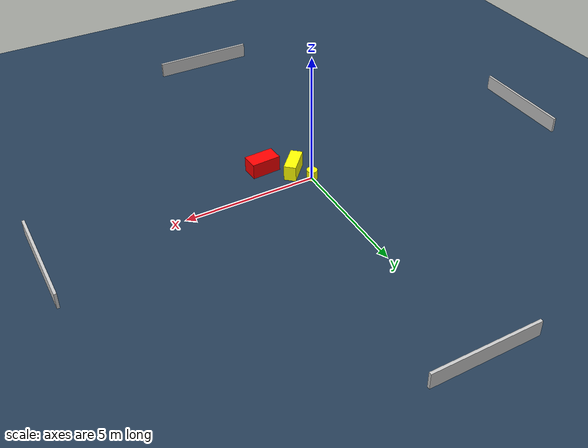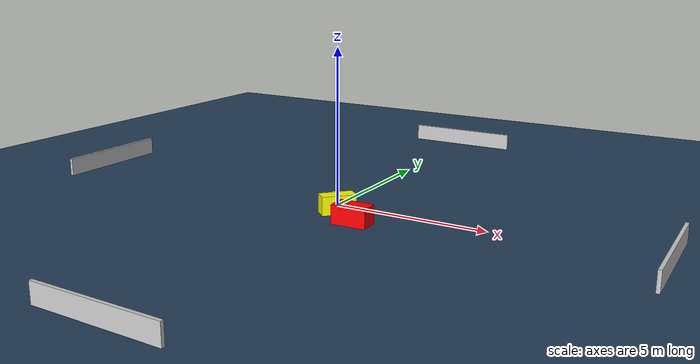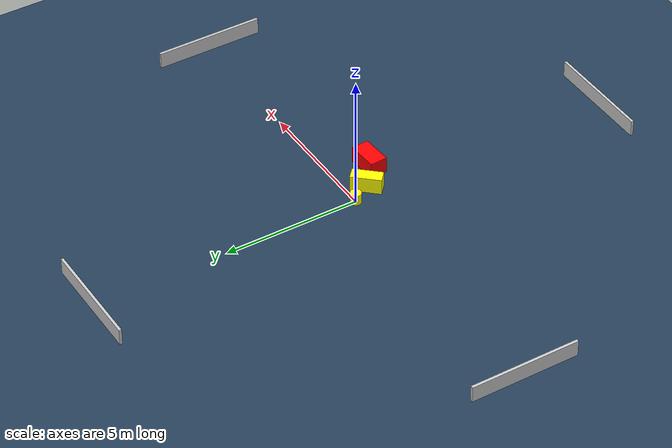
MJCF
<?xml version="1.0" ?>
<mujoco model="generated_environment">
  <option timestep="0.01" integrator="RK4" cone="elliptic"/>
  <default>
    <geom density="1"/>
  </default>
  <asset>
    <texture builtin="gradient" height="3072" name="skybox" rgb1="0.3 0.5 0.7" rgb2="0 0 0" type="skybox" width="512"/>
    <texture builtin="checker" height="300" name="groundplane" rgb1="0.2 0.3 0.4" rgb2="0.1 0.2 0.3" type="2d" width="300"/>
    <material name="groundplane" reflectance="0.2" texrepeat="5 5" texture="groundplane"/>
  </asset>
  <worldbody>
    <light dir="0 0 -1" directional="true" pos="0 0 1.5"/>
    <geom condim="3" friction="0.5 0.005 0.001" material="groundplane" name="floor" pos="0 0 0" size="0 0 0.05" type="plane"/>
    <body name="walls">
      <geom name="wall_1" condim="4" pos="-10.0 0.0 0.3" rgba="0.800000011920929 0.800000011920929 0.800000011920929 1.0" size="0.05 2.0 0.3" type="box"/>
      <geom name="wall_2" condim="4" pos="10.0 0.0 0.3" rgba="0.800000011920929 0.800000011920929 0.800000011920929 1.0" size="0.05 2.0 0.3" type="box"/>
      <geom name="wall_3" condim="4" pos="0.0 -10.0 0.3" rgba="0.800000011920929 0.800000011920929 0.800000011920929 1.0" size="2.0 0.05 0.3" type="box"/>
      <geom name="wall_4" condim="4" pos="0.0 10.0 0.3" rgba="0.800000011920929 0.800000011920929 0.800000011920929 1.0" size="2.0 0.05 0.3" type="box"/>
    </body>
    <body name="robot">
      <joint name="joint_x" type="slide" pos="0 0 0" axis="1 0 0"/>
      <joint name="joint_y" type="slide" pos="0 0 0" axis="0 1 0"/>
      <geom name="robot" type="cylinder" pos="0.0 0.0 0.2" size="0.2 0.2 0.0" mass="5.0" friction="1.0 0.005 0.0001" condim="4" rgba="1.0 1.0 0.0 1.0"/>
    </body>
    <body name="obstacle_1_movable">
      <geom name="obstacle_1_movable" condim="4" pos="0.4093248294041417 -0.6897996942001801 0.3" euler="0 0 227.77099896187457" friction="0.0 0.005 0.001" rgba="1.0 1.0 0.0 1.0" size="0.547528342512863 0.22820492420157287 0.3" type="box" mass="0.1"/>
      <joint type="free"/>
    </body>
    <body name="obstacle_2_static">
      <geom name="obstacle_2_static" condim="4" pos="1.3501786333476158 -1.379120202001812 0.3" euler="0 0 273.2953406193432" friction="0.0 0.005 0.001" rgba="1.0 0.0 0.0 1.0" size="0.3204719127603326 0.5591482803738803 0.3" type="box"/>
    </body>
  </worldbody>
  <actuator>
    <motor name="actuator_x" joint="joint_x" gear="1" ctrlrange="-1 1"/>
    <motor name="actuator_y" joint="joint_y" gear="1" ctrlrange="-1 1"/>
  </actuator>
</mujoco>
